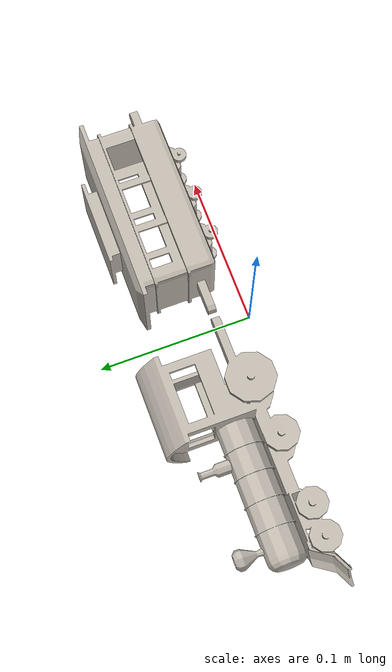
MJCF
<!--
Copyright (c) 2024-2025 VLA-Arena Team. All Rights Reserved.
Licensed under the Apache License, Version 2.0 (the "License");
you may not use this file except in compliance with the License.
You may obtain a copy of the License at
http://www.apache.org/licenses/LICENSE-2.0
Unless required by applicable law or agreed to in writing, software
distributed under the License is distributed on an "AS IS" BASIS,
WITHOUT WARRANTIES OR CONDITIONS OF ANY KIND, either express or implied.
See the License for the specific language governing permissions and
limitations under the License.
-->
<mujoco model="toytrain">
  <default>
    <default class="visual">
      <geom group="1" type="mesh" contype="0" conaffinity="0"/>
    </default>
    <default class="collision">
      <geom group="0" type="mesh"/>
    </default>
  </default>
  <asset>
    <texture type="2d" name="toytrain_Albedo" file="toytrain_Albedo.png"/>
    <material name="toytrain" texture="toytrain_Albedo" specular="0.0" shininess="0.0045"/>
    <mesh name="toytrain" file="toytrain.obj" scale="0.0045 0.0045 0.0045"/>
    <mesh name="toytrain_collision_0" file="toytrain_collision_0.obj" scale="0.0045 0.0045 0.0045"/>
    <mesh name="toytrain_collision_1" file="toytrain_collision_1.obj" scale="0.0045 0.0045 0.0045"/>
    <mesh name="toytrain_collision_2" file="toytrain_collision_2.obj" scale="0.0045 0.0045 0.0045"/>
    <mesh name="toytrain_collision_3" file="toytrain_collision_3.obj" scale="0.0045 0.0045 0.0045"/>
    <mesh name="toytrain_collision_4" file="toytrain_collision_4.obj" scale="0.0045 0.0045 0.0045"/>
    <mesh name="toytrain_collision_5" file="toytrain_collision_5.obj" scale="0.0045 0.0045 0.0045"/>
    <mesh name="toytrain_collision_6" file="toytrain_collision_6.obj" scale="0.0045 0.0045 0.0045"/>
    <mesh name="toytrain_collision_7" file="toytrain_collision_7.obj" scale="0.0045 0.0045 0.0045"/>
    <mesh name="toytrain_collision_8" file="toytrain_collision_8.obj" scale="0.0045 0.0045 0.0045"/>
    <mesh name="toytrain_collision_9" file="toytrain_collision_9.obj" scale="0.0045 0.0045 0.0045"/>
    <mesh name="toytrain_collision_10" file="toytrain_collision_10.obj" scale="0.0045 0.0045 0.0045"/>
    <mesh name="toytrain_collision_11" file="toytrain_collision_11.obj" scale="0.0045 0.0045 0.0045"/>
    <mesh name="toytrain_collision_12" file="toytrain_collision_12.obj" scale="0.0045 0.0045 0.0045"/>
    <mesh name="toytrain_collision_13" file="toytrain_collision_13.obj" scale="0.0045 0.0045 0.0045"/>
    <mesh name="toytrain_collision_14" file="toytrain_collision_14.obj" scale="0.0045 0.0045 0.0045"/>
    <mesh name="toytrain_collision_15" file="toytrain_collision_15.obj" scale="0.0045 0.0045 0.0045"/>
    <mesh name="toytrain_collision_16" file="toytrain_collision_16.obj" scale="0.0045 0.0045 0.0045"/>
    <mesh name="toytrain_collision_17" file="toytrain_collision_17.obj" scale="0.0045 0.0045 0.0045"/>
    <mesh name="toytrain_collision_18" file="toytrain_collision_18.obj" scale="0.0045 0.0045 0.0045"/>
    <mesh name="toytrain_collision_19" file="toytrain_collision_19.obj" scale="0.0045 0.0045 0.0045"/>
    <mesh name="toytrain_collision_20" file="toytrain_collision_20.obj" scale="0.0045 0.0045 0.0045"/>
    <mesh name="toytrain_collision_21" file="toytrain_collision_21.obj" scale="0.0045 0.0045 0.0045"/>
    <mesh name="toytrain_collision_22" file="toytrain_collision_22.obj" scale="0.0045 0.0045 0.0045"/>
    <mesh name="toytrain_collision_23" file="toytrain_collision_23.obj" scale="0.0045 0.0045 0.0045"/>
    <mesh name="toytrain_collision_24" file="toytrain_collision_24.obj" scale="0.0045 0.0045 0.0045"/>
    <mesh name="toytrain_collision_25" file="toytrain_collision_25.obj" scale="0.0045 0.0045 0.0045"/>
    <mesh name="toytrain_collision_26" file="toytrain_collision_26.obj" scale="0.0045 0.0045 0.0045"/>
    <mesh name="toytrain_collision_27" file="toytrain_collision_27.obj" scale="0.0045 0.0045 0.0045"/>
    <mesh name="toytrain_collision_28" file="toytrain_collision_28.obj" scale="0.0045 0.0045 0.0045"/>
    <mesh name="toytrain_collision_29" file="toytrain_collision_29.obj" scale="0.0045 0.0045 0.0045"/>
    <mesh name="toytrain_collision_30" file="toytrain_collision_30.obj" scale="0.0045 0.0045 0.0045"/>
    <mesh name="toytrain_collision_31" file="toytrain_collision_31.obj" scale="0.0045 0.0045 0.0045"/>
    <mesh name="toytrain_collision_32" file="toytrain_collision_32.obj" scale="0.0045 0.0045 0.0045"/>
    <mesh name="toytrain_collision_33" file="toytrain_collision_33.obj" scale="0.0045 0.0045 0.0045"/>
    <mesh name="toytrain_collision_34" file="toytrain_collision_34.obj" scale="0.0045 0.0045 0.0045"/>
    <mesh name="toytrain_collision_35" file="toytrain_collision_35.obj" scale="0.0045 0.0045 0.0045"/>
    <mesh name="toytrain_collision_36" file="toytrain_collision_36.obj" scale="0.0045 0.0045 0.0045"/>
    <mesh name="toytrain_collision_37" file="toytrain_collision_37.obj" scale="0.0045 0.0045 0.0045"/>
    <mesh name="toytrain_collision_38" file="toytrain_collision_38.obj" scale="0.0045 0.0045 0.0045"/>
    <mesh name="toytrain_collision_39" file="toytrain_collision_39.obj" scale="0.0045 0.0045 0.0045"/>
    <mesh name="toytrain_collision_40" file="toytrain_collision_40.obj" scale="0.0045 0.0045 0.0045"/>
    <mesh name="toytrain_collision_41" file="toytrain_collision_41.obj" scale="0.0045 0.0045 0.0045"/>
    <mesh name="toytrain_collision_42" file="toytrain_collision_42.obj" scale="0.0045 0.0045 0.0045"/>
    <mesh name="toytrain_collision_43" file="toytrain_collision_43.obj" scale="0.0045 0.0045 0.0045"/>
    <mesh name="toytrain_collision_44" file="toytrain_collision_44.obj" scale="0.0045 0.0045 0.0045"/>
    <mesh name="toytrain_collision_45" file="toytrain_collision_45.obj" scale="0.0045 0.0045 0.0045"/>
    <mesh name="toytrain_collision_46" file="toytrain_collision_46.obj" scale="0.0045 0.0045 0.0045"/>
    <mesh name="toytrain_collision_47" file="toytrain_collision_47.obj" scale="0.0045 0.0045 0.0045"/>
    <mesh name="toytrain_collision_48" file="toytrain_collision_48.obj" scale="0.0045 0.0045 0.0045"/>
  </asset>
  <worldbody>
  <body>
    <body name="object">
      <geom material="toytrain" mesh="toytrain" class="visual"/>
      <geom mesh="toytrain_collision_0" rgba="0.00451162367705506826 0.8429559706245675 0.522505836690445 0" class="collision"/>
      <geom mesh="toytrain_collision_1" rgba="0.29300261816802164 0.5034267886642303 0.849410750518446 0" class="collision"/>
      <geom mesh="toytrain_collision_2" rgba="0.40221791915012894 0.5906224183999649 0.9165169855765327 0" class="collision"/>
      <geom mesh="toytrain_collision_3" rgba="0.7106028961333746 0.6030092860861759 0.217719092778226 0" class="collision"/>
      <geom mesh="toytrain_collision_4" rgba="0.9299774314824052 0.26677793080088574 0.9367714925586621 0" class="collision"/>
      <geom mesh="toytrain_collision_5" rgba="0.46146202280413806 0.70256463883091 0.9744150582535119 0" class="collision"/>
      <geom mesh="toytrain_collision_6" rgba="0.00453759357585105048 0.9600916000671614 0.4563076400828532 0" class="collision"/>
      <geom mesh="toytrain_collision_7" rgba="0.2863408800766326 0.6964072398441082 0.5857237036325448 0" class="collision"/>
      <geom mesh="toytrain_collision_8" rgba="0.5654821507079572 0.29219009964520937 0.5404213543033773 0" class="collision"/>
      <geom mesh="toytrain_collision_9" rgba="0.9595683461503571 0.7357059392770533 0.47886055504899816 0" class="collision"/>
      <geom mesh="toytrain_collision_10" rgba="0.517231564978897 0.2949740353675291 0.6700126999212035 0" class="collision"/>
      <geom mesh="toytrain_collision_11" rgba="0.7133838646951465 0.3621384256353011 0.6426462015365287 0" class="collision"/>
      <geom mesh="toytrain_collision_12" rgba="0.5706455765499547 0.5959413700562617 0.8806802874042732 0" class="collision"/>
      <geom mesh="toytrain_collision_13" rgba="0.7888761978614034 0.4352181378640323 0.044563770899963995 0" class="collision"/>
      <geom mesh="toytrain_collision_14" rgba="0.4609632657462188 0.7056296252779638 0.6115649431665319 0" class="collision"/>
      <geom mesh="toytrain_collision_15" rgba="0.4777550582397406 0.5853905442370332 0.39073897064661267 0" class="collision"/>
      <geom mesh="toytrain_collision_16" rgba="0.9644796888049705 0.0894871841391498 0.4349023232624286 0" class="collision"/>
      <geom mesh="toytrain_collision_17" rgba="0.212396024501321 0.23759161159795605 0.9714294506158518 0" class="collision"/>
      <geom mesh="toytrain_collision_18" rgba="0.8006295562395086 0.16206159849880186 0.5305413520444967 0" class="collision"/>
      <geom mesh="toytrain_collision_19" rgba="0.2163696670997044 0.1502087398772709 0.9246589645296753 0" class="collision"/>
      <geom mesh="toytrain_collision_20" rgba="0.33821729433494185 0.6779380620616292 0.4986282552260387 0" class="collision"/>
      <geom mesh="toytrain_collision_21" rgba="0.43172229245330307 0.42071488968477 0.03061359430795707 0" class="collision"/>
      <geom mesh="toytrain_collision_22" rgba="0.2233614053160059 0.09397898403878391 0.24035242605921603 0" class="collision"/>
      <geom mesh="toytrain_collision_23" rgba="0.54781404355836 0.9676027234637307 0.3085062569857193 0" class="collision"/>
      <geom mesh="toytrain_collision_24" rgba="0.7649048884710145 0.16403651674445008 0.8320712229219138 0" class="collision"/>
      <geom mesh="toytrain_collision_25" rgba="0.2600373996628743 0.9098124969581045 0.6373822864787518 0" class="collision"/>
      <geom mesh="toytrain_collision_26" rgba="0.4573620374918087 0.31572667508418706 0.3423749246461055 0" class="collision"/>
      <geom mesh="toytrain_collision_27" rgba="0.23028893290078634 0.05231282541298388 0.11246671060820357 0" class="collision"/>
      <geom mesh="toytrain_collision_28" rgba="0.3530437998992658 0.33319885662493365 0.0333011198066695 0" class="collision"/>
      <geom mesh="toytrain_collision_29" rgba="0.5470744491851952 0.4745061877973942 0.6921028705591047 0" class="collision"/>
      <geom mesh="toytrain_collision_30" rgba="0.9748892266100069 0.16433124328731008 0.3564238532208812 0" class="collision"/>
      <geom mesh="toytrain_collision_31" rgba="0.7680033568039152 0.6235189017412063 0.09305156476889986 0" class="collision"/>
      <geom mesh="toytrain_collision_32" rgba="0.004460047161177649 0.5278396575362136 0.468065700346076 0" class="collision"/>
      <geom mesh="toytrain_collision_33" rgba="0.952724109085902 0.9316193443942943 0.25433710599561055 0" class="collision"/>
      <geom mesh="toytrain_collision_34" rgba="0.0031980217229049535 0.5855536506206723 0.614078579480153 0" class="collision"/>
      <geom mesh="toytrain_collision_35" rgba="0.9114597139872386 0.033174639189134214 0.5412026943636761 0" class="collision"/>
      <geom mesh="toytrain_collision_36" rgba="0.04449988937134819 0.2810711164058074 0.3424171343675879 0" class="collision"/>
      <geom mesh="toytrain_collision_37" rgba="0.41339371422530624 0.3229117728732638 0.4680028565367218 0" class="collision"/>
      <geom mesh="toytrain_collision_38" rgba="0.7458851749669506 0.5197864964993881 0.4886100241036452 0" class="collision"/>
      <geom mesh="toytrain_collision_39" rgba="0.6193823865977717 0.8138473908467302 0.8702691788627264 0" class="collision"/>
      <geom mesh="toytrain_collision_40" rgba="0.3089121563423156 0.48085746862923284 0.1298447829681123 0" class="collision"/>
      <geom mesh="toytrain_collision_41" rgba="0.16248807458799264 0.7662059189444915 0.06015395632815612 0" class="collision"/>
      <geom mesh="toytrain_collision_42" rgba="0.21712948484838135 0.4256824050040561 0.0776993571489697 0" class="collision"/>
      <geom mesh="toytrain_collision_43" rgba="0.5814993209883892 0.10984259992780143 0.2666543640357967 0" class="collision"/>
      <geom mesh="toytrain_collision_44" rgba="0.37368781820931574 0.9638976562526909 0.2071827083498331 0" class="collision"/>
      <geom mesh="toytrain_collision_45" rgba="0.08184013965848058 0.720307804443359 0.7860817407905687 0" class="collision"/>
      <geom mesh="toytrain_collision_46" rgba="0.6531905312130722 0.8678299104923958 0.42970025346070395 0" class="collision"/>
      <geom mesh="toytrain_collision_47" rgba="0.33170364811798747 0.24974969909927647 0.534541511641785 0" class="collision"/>
      <geom mesh="toytrain_collision_48" rgba="0.06556733366815215 0.32304466280182886 0.11368178121698369 0" class="collision"/>
    </body>
    <site rgba="0 0 0 0" size="0.005" pos="0 0 -0.04" name="bottom_site" />
        <site rgba="0 0 0 0" size="0.005" pos="0 0 0.04" name="top_site" />
        <site rgba="0 0 0 0" size="0.005" pos="0.025 0.025 0" name="horizontal_radius_site" />
  </body>
  </worldbody>
</mujoco>
